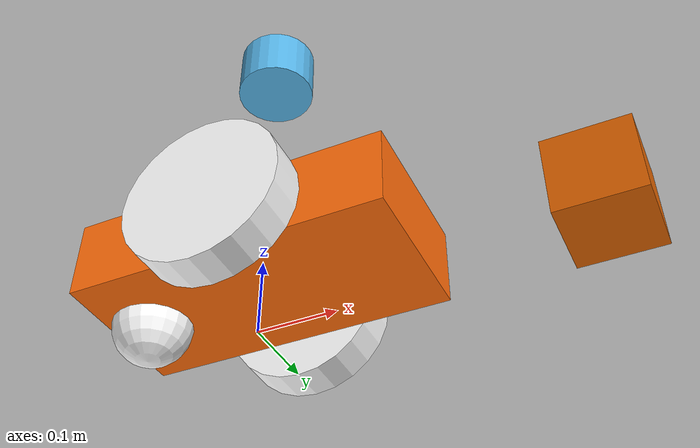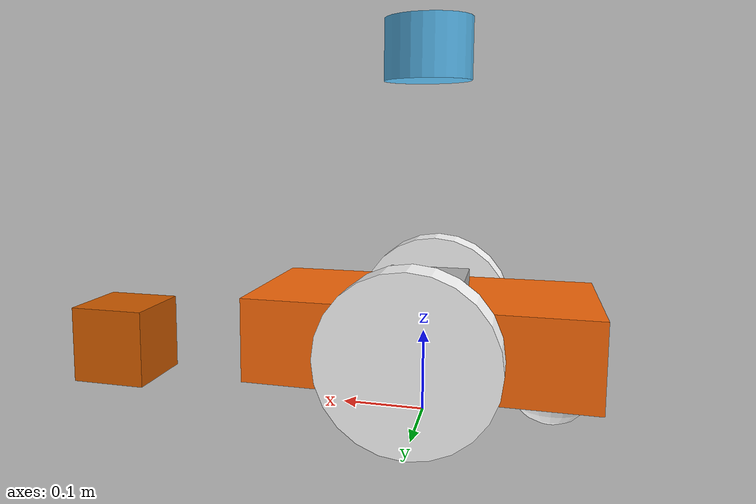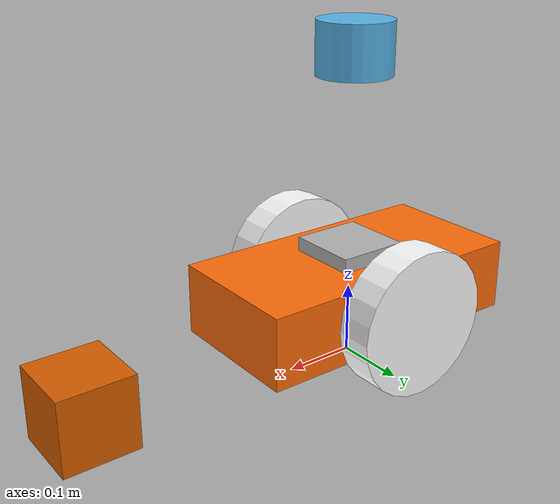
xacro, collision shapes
<?xml version="1.0"?>
<robot name="hideous_robot" xmlns:xacro="http://www.ros.org/wiki/xacro">
        <!-- Put here the robot description -->
<xacro:property name="PI" value="3.1415926535897931"/>
<xacro:property name="gpu" value="false" />

<xacro:property name="chassisHeight" value="0.1"/>
<xacro:property name="chassisLength" value="0.4"/>
<xacro:property name="chassisWidth" value="0.2"/>
<xacro:property name="chassisMass" value="5"/>

<xacro:property name="casterRadius" value="0.05"/>
<xacro:property name="casterMass" value="3"/>

<xacro:property name="wheelWidth" value="0.05"/>
<xacro:property name="wheelRadius" value="0.1"/>
<xacro:property name="wheelPos" value="0.2"/>
<xacro:property name="wheelMass" value="2"/>

<xacro:property name="cameraSize" value="0.05"/>
<xacro:property name="cameraMass" value="0.1"/>
<xacro:include filename="$(find hideous_robot)/robot_description/xacro/robot.gazebo" />
<xacro:include filename="$(find hideous_robot)/robot_description/xacro/material.xacro" />
<xacro:include filename="$(find hideous_robot)/robot_description/xacro/macros.xacro" />
<link name="hideous_robot_link" />

<joint name="base_joint" type="fixed">
  <parent link="hideous_robot_link"/>
  <child link="hideous_robot_chassis"/>
</joint>
<link name='hideous_robot_chassis'>
  <collision>
    <origin xyz="0 0 ${wheelRadius}" rpy="0 0 0"/>
    <geometry>
      <box size="${chassisLength} ${chassisWidth} ${chassisHeight}"/>
    </geometry>
  </collision>
  <visual>
    <origin xyz="0 0 ${wheelRadius}" rpy="0 0 0"/>
    <geometry>
      <box size="${chassisLength} ${chassisWidth} ${chassisHeight}"/>
    </geometry>
    <material name="orange"/>
  </visual>
  <inertial>
    <origin xyz="0 0 ${wheelRadius}" rpy="0 0 0"/>
    <mass value="${chassisMass}"/>
    <box_inertia m="${chassisMass}" x="${chassisLength}" y="${chassisWidth}" z="${chassisHeight}"/>
  </inertial>
</link>
<joint name="fixed" type="fixed">
  <parent link="hideous_robot_chassis"/>
  <child link="hideous_robot_caster_wheel"/>
</joint>

<link name="hideous_robot_caster_wheel">
  <collision>
    <origin xyz="${casterRadius-chassisLength/2} 0 ${casterRadius-chassisHeight+wheelRadius}" rpy="0 0 0"/>
    <geometry>
      <sphere radius="${casterRadius}"/>
    </geometry>
  </collision>

  <visual>
    <origin xyz="${casterRadius-chassisLength/2} 0 ${casterRadius-chassisHeight+wheelRadius}" rpy="0 0 0"/>
    <geometry>
      <sphere radius="${casterRadius}"/>
    </geometry>
    <material name="white"/>
  </visual>

  <inertial>
    <origin xyz="${casterRadius-chassisLength/2} 0 ${casterRadius-chassisHeight+wheelRadius}" rpy="0 0 0"/>
    <mass value="${casterMass}"/>
    <sphere_inertia m="${casterMass}" r="${casterRadius}"/>
  </inertial>
</link>
<link name="hideous_robot_left_wheel">
  <collision>
    <origin xyz="0 0 0" rpy="0 ${PI/2} ${PI/2}" />
    <geometry>
      <cylinder length="${wheelWidth}" radius="${wheelRadius}"/>
    </geometry>
  </collision>

  <visual>
    <origin xyz="0 0 0" rpy="0 ${PI/2} ${PI/2}" />
    <geometry>
      <cylinder length="${wheelWidth}" radius="${wheelRadius}"/>
    </geometry>
    <material name="white"/>
  </visual>

  <inertial>
    <origin xyz="0 0 0" rpy="0 ${PI/2} ${PI/2}" />
    <mass value="${wheelMass}"/>
    <cylinder_inertia m="${wheelMass}" r="${wheelRadius}" h="${wheelWidth}"/>
  </inertial>
</link>

<joint name="hideous_robot_left_wheel_hinge" type="continuous">
  <parent link="hideous_robot_chassis"/>
  <child link="hideous_robot_left_wheel"/>
<origin xyz="${-wheelPos+chassisLength/2} ${1*wheelWidth/2+1*chassisWidth/2} ${wheelRadius}" rpy="0 0 0" />
  <axis xyz="0 1 0" rpy="0 0 0" />
  <limit effort="100" velocity="100"/>
  <joint_properties damping="0.0" friction="0.0"/>
</joint>

<transmission name="left_trans">
  <type>transmission_interface/SimpleTransmission</type>
  <joint name="hideous_robot_left_wheel_hinge">
  	<hardwareInterface>EffortJointInterface</hardwareInterface>
  </joint>
  <actuator name="leftMotor">
    <hardwareInterface>EffortJointInterface</hardwareInterface>
    <mechanicalReduction>1</mechanicalReduction>
  </actuator>
</transmission>
<link name="hideous_robot_right_wheel">
  <collision>
    <origin xyz="0 0 0" rpy="0 ${PI/2} ${PI/2}" />
    <geometry>
      <cylinder length="${wheelWidth}" radius="${wheelRadius}"/>
    </geometry>
  </collision>

  <visual>
    <origin xyz="0 0 0" rpy="0 ${PI/2} ${PI/2}" />
    <geometry>
      <cylinder length="${wheelWidth}" radius="${wheelRadius}"/>
    </geometry>
    <material name="white"/>
  </visual>

  <inertial>
    <origin xyz="0 0 0" rpy="0 ${PI/2} ${PI/2}" />
    <mass value="${wheelMass}"/>
    <cylinder_inertia m="${wheelMass}" r="${wheelRadius}" h="${wheelWidth}"/>
  </inertial>
</link>

<joint name="hideous_robot_right_wheel_hinge" type="continuous">
  <parent link="hideous_robot_chassis"/>
  <child link="hideous_robot_right_wheel"/>
<origin xyz="${-wheelPos+chassisLength/2} ${-1*wheelWidth/2+(-1)*chassisWidth/2} ${wheelRadius}" rpy="0 0 0" />
  <axis xyz="0 1 0" rpy="0 0 0" />
  <limit effort="100" velocity="100"/>
  <joint_properties damping="0.0" friction="0.0"/>
</joint>

<transmission name="right_trans">
  <type>transmission_interface/SimpleTransmission</type>
  <joint name="hideous_robot_right_wheel_hinge">
  <hardwareInterface>EffortJointInterface</hardwareInterface>
   </joint>
  <actuator name="rightMotor">
    <hardwareInterface>EffortJointInterface</hardwareInterface>
    <mechanicalReduction>1</mechanicalReduction>
  </actuator>
</transmission>

<link name="camera_link_back">
    <collision>
      <origin xyz="0.205 0 0" rpy="0 0 0"/>
      <geometry>
        <box size="0.1 0.1 0.1"/>
      </geometry>
    </collision>
    <visual>
      <origin xyz="0 0 0" rpy="0 0 0"/>
      <geometry>
        <mesh filename="package://hideous_robot/models/meshes/realsense.dae" />
      </geometry>
    </visual>
    <inertial>
      <mass value="1e-5" />
      <origin xyz="0 0 0" rpy="0 0 0"/>
      <inertia ixx="1e-6" ixy="0" ixz="0" iyy="1e-6" iyz="0" izz="1e-6" />
    </inertial>
  </link>

  <joint name="camera_joint_back" type="fixed">
    <axis xyz="0 1 0" />
    <origin xyz="0.20495 0 .06" rpy="0 0 0"/>
    <parent link="hideous_robot_chassis"/>
    <child link="camera_link_back"/>
  </joint>

  <joint name="camera_optical_joint_back" type="fixed">
    <origin xyz="0 0 0" rpy="-1.5708 0 -1.5708"/>
    <parent link="camera_link_back"/>
    <child link="camera_link_optical_back"/>
  </joint>

  <link name="camera_link_optical_back">
  </link>

  <link name="camera_link_front">
    <collision>
      <origin xyz="-0.205 0 0.06" rpy="0 0 0"/>
      <geometry>
        <box size="0.1 0.1 0.1"/>
      </geometry>
    </collision>
    <visual>
      <origin xyz="0 0 0" rpy="0 0 0"/>
      <geometry>
        <mesh filename="package://hideous_robot/models/meshes/realsense.dae" />
      </geometry>
    </visual>
    <inertial>
      <mass value="1e-5" />
      <origin xyz="0 0 0" rpy="0 0 0"/>
      <inertia ixx="1e-6" ixy="0" ixz="0" iyy="1e-6" iyz="0" izz="1e-6" />
    </inertial>
  </link>

  <joint name="camera_joint_front" type="fixed">
    <axis xyz="0 1 0" />
    <origin xyz="-0.20495 0 .06" rpy="0 0 3.14159"/>
    <parent link="hideous_robot_chassis"/>
    <child link="camera_link_front"/>
  </joint>

  <joint name="camera_optical_joint_front" type="fixed">
    <origin xyz="0 0 0" rpy="-1.5708 0 -1.5708"/>
    <parent link="camera_link_front"/>
    <child link="camera_link_optical_front"/>
  </joint>

  <link name="camera_link_optical_front">
  </link>

  <xacro:include filename="$(find hideous_robot)/robot_description/xacro/VLP-16.urdf.xacro"/>
  <VLP-16 parent="hideous_robot_chassis" name="velodyne" topic="/velodyne_points" hz="10" samples="440" gpu="${gpu}">
    <origin xyz="0 0 0.4" rpy="0 0 0" />
  </VLP-16>

</robot>

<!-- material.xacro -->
<robot name="hideous_robot" xmlns:xacro="http://www.ros.org/wiki/xacro">
<material name="black">
  <color rgba="0.0 0.0 0.0 1.0"/>
</material>

<material name="blue">
  <color rgba="0.0 0.0 0.8 1.0"/>
</material>

<material name="green">
  <color rgba="0.0 0.8 0.0 1.0"/>
</material>

<material name="grey">
  <color rgba="0.2 0.2 0.2 1.0"/>
</material>

<material name="orange">
  <color rgba="${255/255} ${108/255} ${10/255} 1.0"/>
</material>

<material name="brown">
  <color rgba="${222/255} ${207/255} ${195/255} 1.0"/>
</material>

<material name="red">
  <color rgba="0.8 0.0 0.0 1.0"/>
</material>

<material name="white">
  <color rgba="1.0 1.0 1.0 1.0"/>
</material>
</robot>

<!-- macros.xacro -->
<robot name="hideous_robot" xmlns:xacro="http://www.ros.org/wiki/xacro">
<macro name="cylinder_inertia" params="m r h">
  <inertia  ixx="${m*(3*r*r+h*h)/12}" ixy = "0" ixz = "0"
    iyy="${m*(3*r*r+h*h)/12}" iyz = "0"
    izz="${m*r*r/2}"
  />
</macro>

<macro name="box_inertia" params="m x y z">
  <inertia  ixx="${m*(y*y+z*z)/12}" ixy = "0" ixz = "0"
    iyy="${m*(x*x+z*z)/12}" iyz = "0"
    izz="${m*(x*x+z*z)/12}"
  />
</macro>

<macro name="sphere_inertia" params="m r">
  <inertia  ixx="${2*m*r*r/5}" ixy = "0" ixz = "0"
    iyy="${2*m*r*r/5}" iyz = "0"
    izz="${2*m*r*r/5}"
  />
</macro>
</robot>

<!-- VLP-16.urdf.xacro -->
<robot xmlns:xacro="http://www.ros.org/wiki/xacro" name="VLP-16">
  <xacro:property name="M_PI" value="3.1415926535897931" />
  <xacro:macro name="VLP-16" params="*origin parent:=hideous_robot_chassis name:=velodyne topic:=/velodyne_points hz:=10 lasers:=16 samples:=1875 collision_range:=0.3 min_range:=0.9 max_range:=130.0 noise:=0.008 min_angle:=-${M_PI} max_angle:=${M_PI} gpu:=false">

    <joint name="${name}_base_mount_joint" type="fixed">
      <xacro:insert_block name="origin" />
      <parent link="${parent}"/>
      <child link="${name}_base_link"/>
    </joint>

    <link name="${name}_base_link">
      <inertial>
        <mass value="0.83"/>
        <origin xyz="0 0 0.03585"/>
        <inertia ixx="${(0.83 * (3.0*0.0516*0.0516 + 0.0717*0.0717)) / 12.0}" ixy="0" ixz="0"
          iyy="${(0.83 * (3.0*0.0516*0.0516 + 0.0717*0.0717)) / 12.0}" iyz="0"
          izz="${0.5 * 0.83 * (0.0516*0.0516)}"/>
      </inertial>
      <visual>
        <geometry>
          <mesh filename="package://hideous_robot/models/meshes/VLP16_base_1.dae" />
        </geometry>
      </visual>
      <visual>
        <geometry>
          <mesh filename="package://hideous_robot/models/meshes/VLP16_base_2.dae" />
        </geometry>
      </visual>
      <collision>
        <origin rpy="0 0 0" xyz="0 0 0.03585"/>
        <geometry>
          <cylinder radius="0.0516" length="0.0717"/>
        </geometry>
      </collision>
    </link>

    <joint name="${name}_base_scan_joint" type="fixed" >
      <origin xyz="0 0 0.0377" rpy="0 0 0" />
      <parent link="${name}_base_link" />
      <child link="${name}"/>
    </joint>

    <link name="${name}">
      <inertial>
        <mass value="0.01"/>
        <origin xyz="0 0 0"/>
        <inertia ixx="1e-7" ixy="0" ixz="0" iyy="1e-7" iyz="0" izz="1e-7"/>
      </inertial>
      <visual>
        <origin xyz="0 0 -0.0377" />
        <geometry>
          <mesh filename="package://hideous_robot/models/meshes/VLP16_scan.dae" />
        </geometry>
      </visual>
    </link>

    <!-- Gazebo requires the velodyne_gazebo_plugins package -->
    <gazebo reference="${name}">
      <xacro:if value="${gpu}">
        <sensor type="gpu_ray" name="${name}-VLP16">
          <pose>0 0 0 0 0 0</pose>
          <visualize>false</visualize>
          <update_rate>${hz}</update_rate>
          <ray>
            <scan>
              <horizontal>
                <samples>${samples}</samples>
                <resolution>1</resolution>
                <min_angle>${min_angle}</min_angle>
                <max_angle>${max_angle}</max_angle>
              </horizontal>
              <vertical>
                <samples>${lasers}</samples>
                <resolution>1</resolution>
                <min_angle>-${15.0*M_PI/180.0}</min_angle>
                <max_angle> ${15.0*M_PI/180.0}</max_angle>
              </vertical>
            </scan>
            <range>
              <min>${collision_range}</min>
              <max>${max_range+1}</max>
              <resolution>0.001</resolution>
            </range>
            <noise>
              <type>gaussian</type>
              <mean>0.0</mean>
              <stddev>0.0</stddev>
            </noise>
          </ray>
          <plugin name="gazebo_ros_laser_controller" filename="libgazebo_ros_velodyne_gpu_laser.so">
            <topicName>${topic}</topicName>
            <frameName>${name}</frameName>
            <min_range>${min_range}</min_range>
            <max_range>${max_range}</max_range>
            <gaussianNoise>${noise}</gaussianNoise>
          </plugin>
        </sensor>
      </xacro:if>
      <xacro:unless value="${gpu}">
        <sensor type="ray" name="${name}-VLP16">
          <pose>0 0 0 0 0 0</pose>
          <visualize>false</visualize>
          <update_rate>${hz}</update_rate>
          <ray>
            <scan>
              <horizontal>
                <samples>${samples}</samples>
                <resolution>1</resolution>
                <min_angle>${min_angle}</min_angle>
                <max_angle>${max_angle}</max_angle>
              </horizontal>
              <vertical>
                <samples>${lasers}</samples>
                <resolution>1</resolution>
                <min_angle>-${15.0*M_PI/180.0}</min_angle>
                <max_angle> ${15.0*M_PI/180.0}</max_angle>
              </vertical>
            </scan>
            <range>
              <min>${collision_range}</min>
              <max>${max_range+1}</max>
              <resolution>0.001</resolution>
            </range>
            <noise>
              <type>gaussian</type>
              <mean>0.0</mean>
              <stddev>0.0</stddev>
            </noise>
          </ray>
          <plugin name="gazebo_ros_laser_controller" filename="libgazebo_ros_velodyne_laser.so">
            <topicName>${topic}</topicName>
            <frameName>${name}</frameName>
            <min_range>${min_range}</min_range>
            <max_range>${max_range}</max_range>
            <gaussianNoise>${noise}</gaussianNoise>
          </plugin>
        </sensor>
      </xacro:unless>
    </gazebo>

  </xacro:macro>
</robot>
